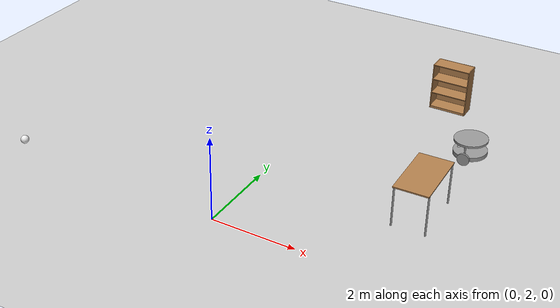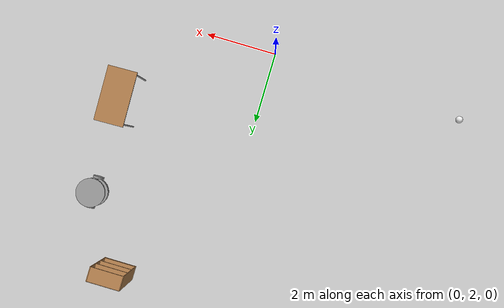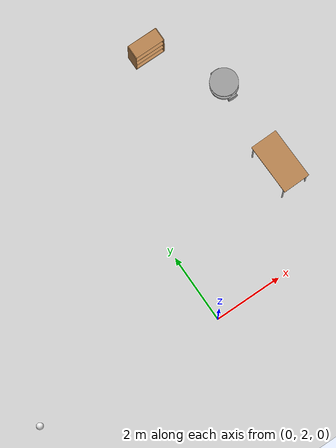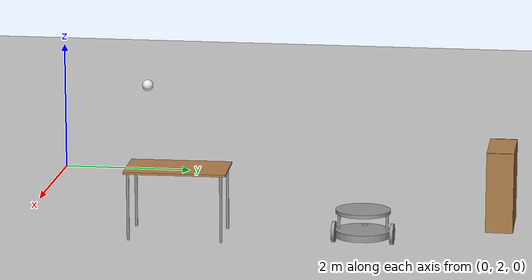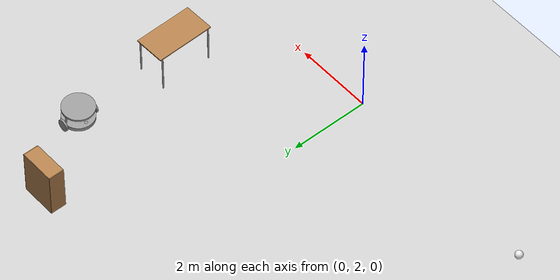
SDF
<sdf version="1.6">
 <world name="default">
  <model name="ground_plane">
   <static>1</static>
   <link name="link">
    <collision name="collision">
     <geometry><plane><normal>0 0 1</normal><size>100 100</size></plane></geometry>
     <surface>
      <contact><collide_bitmask>65535</collide_bitmask></contact>
      <friction><ode><mu>100</mu><mu2>50</mu2></ode></friction>
     </surface>
    </collision>
    <visual name="visual">
     <cast_shadows>0</cast_shadows>
     <geometry><plane><normal>0 0 1</normal><size>100 100</size></plane></geometry>
     <material>
      <script><uri>file://media/materials/scripts/gazebo.material</uri><name>Gazebo/Grey</name></script>
     </material>
    </visual>
   </link>
  </model>
  <model name="robot">
   <link name="link_0">
    <inertial>
     <mass>1</mass>
     <inertia><ixx>0.145833</ixx><ixy>0</ixy><ixz>0</ixz><iyy>0.145833</iyy><iyz>0</iyz><izz>0.125</izz></inertia>
    </inertial>
    <pose>0.367061 -0.311434 -0.068144 0 -0 0</pose>
    <visual name="visual">
     <geometry><cylinder><radius>0.4</radius><length>0.1</length></cylinder></geometry>
     <material>
      <lighting>1</lighting>
      <script><uri>file://media/materials/scripts/gazebo.material</uri><name>Gazebo/Grey</name></script>
      <shader type="vertex"><normal_map>__default__</normal_map></shader>
      <ambient>0.3 0.3 0.3 1</ambient>
      <diffuse>0.7 0.7 0.7 1</diffuse>
      <specular>0.01 0.01 0.01 1</specular>
      <emissive>0 0 0 1</emissive>
     </material>
    </visual>
    <collision name="collision">
     <geometry><cylinder><radius>0.4</radius><length>0.1</length></cylinder></geometry>
     <surface>
      <friction>
       <ode><mu>1</mu><mu2>1</mu2><fdir1>0 0 0</fdir1><slip1>0</slip1><slip2>0</slip2></ode>
       <torsional>
        <coefficient>1</coefficient>
        <patch_radius>0</patch_radius>
        <surface_radius>0</surface_radius>
        <use_patch_radius>1</use_patch_radius>
        <ode><slip>0</slip></ode>
       </torsional>
      </friction>
      <bounce><restitution_coefficient>0</restitution_coefficient><threshold>1e+06</threshold></bounce>
      <contact>
       <collide_without_contact>0</collide_without_contact>
       <collide_without_contact_bitmask>1</collide_without_contact_bitmask>
       <collide_bitmask>1</collide_bitmask>
       <ode>
        <soft_cfm>0</soft_cfm>
        <soft_erp>0.2</soft_erp>
        <kp>1e+13</kp>
        <kd>1</kd>
        <max_vel>0.01</max_vel>
        <min_depth>0</min_depth>
       </ode>
       <bullet>
        <split_impulse>1</split_impulse>
        <split_impulse_penetration_threshold>-0.01</split_impulse_penetration_threshold>
        <soft_cfm>0</soft_cfm>
        <soft_erp>0.2</soft_erp>
        <kp>1e+13</kp>
        <kd>1</kd>
       </bullet>
      </contact>
     </surface>
    </collision>
   </link>
   <link name="link_0_clone">
    <inertial>
     <mass>1</mass>
     <inertia><ixx>0.145833</ixx><ixy>0</ixy><ixz>0</ixz><iyy>0.145833</iyy><iyz>0</iyz><izz>0.125</izz></inertia>
    </inertial>
    <pose>0.367061 -0.311434 0.256856 0 -0 0</pose>
    <visual name="visual">
     <geometry><cylinder><radius>0.4</radius><length>0.05</length></cylinder></geometry>
     <material>
      <lighting>1</lighting>
      <script><uri>file://media/materials/scripts/gazebo.material</uri><name>Gazebo/Grey</name></script>
      <shader type="vertex"><normal_map>__default__</normal_map></shader>
      <ambient>0.3 0.3 0.3 1</ambient>
      <diffuse>0.7 0.7 0.7 1</diffuse>
      <specular>0.01 0.01 0.01 1</specular>
      <emissive>0 0 0 1</emissive>
     </material>
    </visual>
    <collision name="collision">
     <geometry><cylinder><radius>0.4</radius><length>0.05</length></cylinder></geometry>
     <surface>
      <friction>
       <ode><mu>1</mu><mu2>1</mu2><fdir1>0 0 0</fdir1><slip1>0</slip1><slip2>0</slip2></ode>
       <torsional>
        <coefficient>1</coefficient>
        <patch_radius>0</patch_radius>
        <surface_radius>0</surface_radius>
        <use_patch_radius>1</use_patch_radius>
        <ode><slip>0</slip></ode>
       </torsional>
      </friction>
      <bounce><restitution_coefficient>0</restitution_coefficient><threshold>1e+06</threshold></bounce>
      <contact>
       <collide_without_contact>0</collide_without_contact>
       <collide_without_contact_bitmask>1</collide_without_contact_bitmask>
       <collide_bitmask>1</collide_bitmask>
       <ode>
        <soft_cfm>0</soft_cfm>
        <soft_erp>0.2</soft_erp>
        <kp>1e+13</kp>
        <kd>1</kd>
        <max_vel>0.01</max_vel>
        <min_depth>0</min_depth>
       </ode>
       <bullet>
        <split_impulse>1</split_impulse>
        <split_impulse_penetration_threshold>-0.01</split_impulse_penetration_threshold>
        <soft_cfm>0</soft_cfm>
        <soft_erp>0.2</soft_erp>
        <kp>1e+13</kp>
        <kd>1</kd>
       </bullet>
      </contact>
     </surface>
    </collision>
   </link>
   <link name="link_1">
    <inertial>
     <mass>1</mass>
     <inertia><ixx>0.145833</ixx><ixy>0</ixy><ixz>0</ixz><iyy>0.145833</iyy><iyz>0</iyz><izz>0.125</izz></inertia>
    </inertial>
    <pose>0.367061 -0.736453 -0.068144 1.5707 -0 0</pose>
    <visual name="visual">
     <geometry><cylinder><radius>0.15</radius><length>0.05</length></cylinder></geometry>
     <material>
      <lighting>1</lighting>
      <script><uri>file://media/materials/scripts/gazebo.material</uri><name>Gazebo/Grey</name></script>
      <shader type="vertex"><normal_map>__default__</normal_map></shader>
      <ambient>0.3 0.3 0.3 1</ambient>
      <diffuse>0.7 0.7 0.7 1</diffuse>
      <specular>0.01 0.01 0.01 1</specular>
      <emissive>0 0 0 1</emissive>
     </material>
    </visual>
    <collision name="collision">
     <geometry><cylinder><radius>0.15</radius><length>0.05</length></cylinder></geometry>
     <surface>
      <friction>
       <ode><mu>1</mu><mu2>1</mu2><fdir1>0 0 0</fdir1><slip1>0</slip1><slip2>0</slip2></ode>
       <torsional>
        <coefficient>1</coefficient>
        <patch_radius>0</patch_radius>
        <surface_radius>0</surface_radius>
        <use_patch_radius>1</use_patch_radius>
        <ode><slip>0</slip></ode>
       </torsional>
      </friction>
      <bounce><restitution_coefficient>0</restitution_coefficient><threshold>1e+06</threshold></bounce>
      <contact>
       <collide_without_contact>0</collide_without_contact>
       <collide_without_contact_bitmask>1</collide_without_contact_bitmask>
       <collide_bitmask>1</collide_bitmask>
       <ode>
        <soft_cfm>0</soft_cfm>
        <soft_erp>0.2</soft_erp>
        <kp>1e+13</kp>
        <kd>1</kd>
        <max_vel>0.01</max_vel>
        <min_depth>0</min_depth>
       </ode>
       <bullet>
        <split_impulse>1</split_impulse>
        <split_impulse_penetration_threshold>-0.01</split_impulse_penetration_threshold>
        <soft_cfm>0</soft_cfm>
        <soft_erp>0.2</soft_erp>
        <kp>1e+13</kp>
        <kd>1</kd>
       </bullet>
      </contact>
     </surface>
    </collision>
   </link>
   <link name="link_1_clone">
    <inertial>
     <mass>1</mass>
     <inertia><ixx>0.145833</ixx><ixy>0</ixy><ixz>0</ixz><iyy>0.145833</iyy><iyz>0</iyz><izz>0.125</izz></inertia>
    </inertial>
    <pose>0.367061 0.113585 -0.068144 1.5707 -0 0</pose>
    <visual name="visual">
     <geometry><cylinder><radius>0.15</radius><length>0.05</length></cylinder></geometry>
     <material>
      <lighting>1</lighting>
      <script><uri>file://media/materials/scripts/gazebo.material</uri><name>Gazebo/Grey</name></script>
      <shader type="vertex"><normal_map>__default__</normal_map></shader>
      <ambient>0.3 0.3 0.3 1</ambient>
      <diffuse>0.7 0.7 0.7 1</diffuse>
      <specular>0.01 0.01 0.01 1</specular>
      <emissive>0 0 0 1</emissive>
     </material>
    </visual>
    <collision name="collision">
     <geometry><cylinder><radius>0.15</radius><length>0.05</length></cylinder></geometry>
     <surface>
      <friction>
       <ode><mu>1</mu><mu2>1</mu2><fdir1>0 0 0</fdir1><slip1>0</slip1><slip2>0</slip2></ode>
       <torsional>
        <coefficient>1</coefficient>
        <patch_radius>0</patch_radius>
        <surface_radius>0</surface_radius>
        <use_patch_radius>1</use_patch_radius>
        <ode><slip>0</slip></ode>
       </torsional>
      </friction>
      <bounce><restitution_coefficient>0</restitution_coefficient><threshold>1e+06</threshold></bounce>
      <contact>
       <collide_without_contact>0</collide_without_contact>
       <collide_without_contact_bitmask>1</collide_without_contact_bitmask>
       <collide_bitmask>1</collide_bitmask>
       <ode>
        <soft_cfm>0</soft_cfm>
        <soft_erp>0.2</soft_erp>
        <kp>1e+13</kp>
        <kd>1</kd>
        <max_vel>0.01</max_vel>
        <min_depth>0</min_depth>
       </ode>
       <bullet>
        <split_impulse>1</split_impulse>
        <split_impulse_penetration_threshold>-0.01</split_impulse_penetration_threshold>
        <soft_cfm>0</soft_cfm>
        <soft_erp>0.2</soft_erp>
        <kp>1e+13</kp>
        <kd>1</kd>
       </bullet>
      </contact>
     </surface>
    </collision>
   </link>
   <link name="link_4_clone">
    <inertial>
     <mass>1</mass>
     <inertia><ixx>0.1</ixx><ixy>0</ixy><ixz>0</ixz><iyy>0.1</iyy><iyz>0</iyz><izz>0.1</izz></inertia>
    </inertial>
    <pose>0.087061 -0.311434 -0.108068 0 -0 0</pose>
    <visual name="visual">
     <geometry><sphere><radius>0.1</radius></sphere></geometry>
     <material>
      <lighting>1</lighting>
      <script><uri>file://media/materials/scripts/gazebo.material</uri><name>Gazebo/Grey</name></script>
      <shader type="vertex"><normal_map>__default__</normal_map></shader>
      <ambient>0.3 0.3 0.3 1</ambient>
      <diffuse>0.7 0.7 0.7 1</diffuse>
      <specular>0.01 0.01 0.01 1</specular>
      <emissive>0 0 0 1</emissive>
     </material>
    </visual>
    <collision name="collision">
     <geometry><sphere><radius>0.1</radius></sphere></geometry>
     <surface>
      <friction>
       <ode><mu>1</mu><mu2>1</mu2><fdir1>0 0 0</fdir1><slip1>0</slip1><slip2>0</slip2></ode>
       <torsional>
        <coefficient>1</coefficient>
        <patch_radius>0</patch_radius>
        <surface_radius>0</surface_radius>
        <use_patch_radius>1</use_patch_radius>
        <ode><slip>0</slip></ode>
       </torsional>
      </friction>
      <bounce><restitution_coefficient>0</restitution_coefficient><threshold>1e+06</threshold></bounce>
      <contact>
       <collide_without_contact>0</collide_without_contact>
       <collide_without_contact_bitmask>1</collide_without_contact_bitmask>
       <collide_bitmask>1</collide_bitmask>
       <ode>
        <soft_cfm>0</soft_cfm>
        <soft_erp>0.2</soft_erp>
        <kp>1e+13</kp>
        <kd>1</kd>
        <max_vel>0.01</max_vel>
        <min_depth>0</min_depth>
       </ode>
       <bullet>
        <split_impulse>1</split_impulse>
        <split_impulse_penetration_threshold>-0.01</split_impulse_penetration_threshold>
        <soft_cfm>0</soft_cfm>
        <soft_erp>0.2</soft_erp>
        <kp>1e+13</kp>
        <kd>1</kd>
       </bullet>
      </contact>
     </surface>
    </collision>
   </link>
   <link name="link_5_clone">
    <inertial>
     <mass>1</mass>
     <inertia><ixx>0.145833</ixx><ixy>0</ixy><ixz>0</ixz><iyy>0.145833</iyy><iyz>0</iyz><izz>0.125</izz></inertia>
    </inertial>
    <pose>0.367061 -0.661434 0.081856 0 -0 0</pose>
    <visual name="visual">
     <geometry><cylinder><radius>0.02</radius><length>0.3</length></cylinder></geometry>
     <material>
      <lighting>1</lighting>
      <script><uri>file://media/materials/scripts/gazebo.material</uri><name>Gazebo/Grey</name></script>
      <shader type="vertex"><normal_map>__default__</normal_map></shader>
      <ambient>0.3 0.3 0.3 1</ambient>
      <diffuse>0.7 0.7 0.7 1</diffuse>
      <specular>0.01 0.01 0.01 1</specular>
      <emissive>0 0 0 1</emissive>
     </material>
    </visual>
    <collision name="collision">
     <geometry><cylinder><radius>0.02</radius><length>0.3</length></cylinder></geometry>
     <surface>
      <friction>
       <ode><mu>1</mu><mu2>1</mu2><fdir1>0 0 0</fdir1><slip1>0</slip1><slip2>0</slip2></ode>
       <torsional>
        <coefficient>1</coefficient>
        <patch_radius>0</patch_radius>
        <surface_radius>0</surface_radius>
        <use_patch_radius>1</use_patch_radius>
        <ode><slip>0</slip></ode>
       </torsional>
      </friction>
      <bounce><restitution_coefficient>0</restitution_coefficient><threshold>1e+06</threshold></bounce>
      <contact>
       <collide_without_contact>0</collide_without_contact>
       <collide_without_contact_bitmask>1</collide_without_contact_bitmask>
       <collide_bitmask>1</collide_bitmask>
       <ode>
        <soft_cfm>0</soft_cfm>
        <soft_erp>0.2</soft_erp>
        <kp>1e+13</kp>
        <kd>1</kd>
        <max_vel>0.01</max_vel>
        <min_depth>0</min_depth>
       </ode>
       <bullet>
        <split_impulse>1</split_impulse>
        <split_impulse_penetration_threshold>-0.01</split_impulse_penetration_threshold>
        <soft_cfm>0</soft_cfm>
        <soft_erp>0.2</soft_erp>
        <kp>1e+13</kp>
        <kd>1</kd>
       </bullet>
      </contact>
     </surface>
    </collision>
   </link>
   <link name="link_5_clone_clone">
    <inertial>
     <mass>1</mass>
     <inertia><ixx>0.145833</ixx><ixy>0</ixy><ixz>0</ixz><iyy>0.145833</iyy><iyz>0</iyz><izz>0.125</izz></inertia>
    </inertial>
    <pose>0.367061 0.038566 0.081856 0 -0 0</pose>
    <visual name="visual">
     <geometry><cylinder><radius>0.02</radius><length>0.3</length></cylinder></geometry>
     <material>
      <lighting>1</lighting>
      <script><uri>file://media/materials/scripts/gazebo.material</uri><name>Gazebo/Grey</name></script>
      <shader type="vertex"><normal_map>__default__</normal_map></shader>
      <ambient>0.3 0.3 0.3 1</ambient>
      <diffuse>0.7 0.7 0.7 1</diffuse>
      <specular>0.01 0.01 0.01 1</specular>
      <emissive>0 0 0 1</emissive>
     </material>
    </visual>
    <collision name="collision">
     <geometry><cylinder><radius>0.02</radius><length>0.3</length></cylinder></geometry>
     <surface>
      <friction>
       <ode><mu>1</mu><mu2>1</mu2><fdir1>0 0 0</fdir1><slip1>0</slip1><slip2>0</slip2></ode>
       <torsional>
        <coefficient>1</coefficient>
        <patch_radius>0</patch_radius>
        <surface_radius>0</surface_radius>
        <use_patch_radius>1</use_patch_radius>
        <ode><slip>0</slip></ode>
       </torsional>
      </friction>
      <bounce><restitution_coefficient>0</restitution_coefficient><threshold>1e+06</threshold></bounce>
      <contact>
       <collide_without_contact>0</collide_without_contact>
       <collide_without_contact_bitmask>1</collide_without_contact_bitmask>
       <collide_bitmask>1</collide_bitmask>
       <ode>
        <soft_cfm>0</soft_cfm>
        <soft_erp>0.2</soft_erp>
        <kp>1e+13</kp>
        <kd>1</kd>
        <max_vel>0.01</max_vel>
        <min_depth>0</min_depth>
       </ode>
       <bullet>
        <split_impulse>1</split_impulse>
        <split_impulse_penetration_threshold>-0.01</split_impulse_penetration_threshold>
        <soft_cfm>0</soft_cfm>
        <soft_erp>0.2</soft_erp>
        <kp>1e+13</kp>
        <kd>1</kd>
       </bullet>
      </contact>
     </surface>
    </collision>
   </link>
   <joint name="link_0_JOINT_0" type="revolute">
    <parent>link_0</parent>
    <child>link_1</child>
    <axis>
     <xyz>0 0 1</xyz>
     <use_parent_model_frame>0</use_parent_model_frame>
     <limit>
      <lower>-1.79769e+308</lower>
      <upper>1.79769e+308</upper>
      <effort>-1</effort>
      <velocity>-1</velocity>
     </limit>
     <dynamics>
      <spring_reference>0</spring_reference>
      <spring_stiffness>0</spring_stiffness>
      <damping>0</damping>
      <friction>0</friction>
     </dynamics>
    </axis>
    <physics>
     <ode><limit><cfm>0</cfm><erp>0.2</erp></limit><suspension><cfm>0</cfm><erp>0.2</erp></suspension></ode>
    </physics>
   </joint>
   <joint name="link_0_JOINT_10" type="fixed">
    <parent>link_0</parent>
    <child>link_5_clone_clone</child>
    <physics>
     <ode><limit><cfm>0</cfm><erp>0.2</erp></limit><suspension><cfm>0</cfm><erp>0.2</erp></suspension></ode>
    </physics>
   </joint>
   <joint name="link_0_JOINT_1" type="revolute">
    <parent>link_0</parent>
    <child>link_1_clone</child>
    <axis>
     <xyz>0 0 1</xyz>
     <use_parent_model_frame>0</use_parent_model_frame>
     <limit>
      <lower>-1.79769e+308</lower>
      <upper>1.79769e+308</upper>
      <effort>-1</effort>
      <velocity>-1</velocity>
     </limit>
     <dynamics>
      <spring_reference>0</spring_reference>
      <spring_stiffness>0</spring_stiffness>
      <damping>0</damping>
      <friction>0</friction>
     </dynamics>
    </axis>
    <physics>
     <ode><limit><cfm>0</cfm><erp>0.2</erp></limit><suspension><cfm>0</cfm><erp>0.2</erp></suspension></ode>
    </physics>
   </joint>
   <joint name="link_0_JOINT_8" type="ball">
    <parent>link_0</parent>
    <child>link_4_clone</child>
    <pose>0 0 -0.1 0 -0 0</pose>
    <physics>
     <ode><limit><cfm>0</cfm><erp>0.2</erp></limit><suspension><cfm>0</cfm><erp>0.2</erp></suspension></ode>
    </physics>
   </joint>
   <joint name="link_0_JOINT_9" type="fixed">
    <parent>link_0</parent>
    <child>link_5_clone</child>
    <physics>
     <ode><limit><cfm>0</cfm><erp>0.2</erp></limit><suspension><cfm>0</cfm><erp>0.2</erp></suspension></ode>
    </physics>
   </joint>
   <joint name="link_5_clone_clone_JOINT_12" type="fixed">
    <parent>link_5_clone_clone</parent>
    <child>link_0_clone</child>
    <physics>
     <ode><limit><cfm>0</cfm><erp>0.2</erp></limit><suspension><cfm>0</cfm><erp>0.2</erp></suspension></ode>
    </physics>
   </joint>
   <static>0</static>
   <pose>3.41612 7.49908 0.204772 -3e-06 -0.036316 -0.020552</pose>
  </model>
  <model name="table">
   <static>1</static>
   <link name="link">
    <collision name="surface">
     <pose>0 0 1 0 -0 0</pose>
     <geometry><box><size>1.5 0.8 0.03</size></box></geometry>
     <surface><friction><ode><mu>0.6</mu><mu2>0.6</mu2></ode></friction></surface>
    </collision>
    <visual name="visual1">
     <pose>0 0 1 0 -0 0</pose>
     <geometry><box><size>1.5 0.8 0.03</size></box></geometry>
     <material>
      <script><uri>file://media/materials/scripts/gazebo.material</uri><name>Gazebo/Wood</name></script>
     </material>
    </visual>
    <collision name="front_left_leg">
     <pose>0.68 0.38 0.5 0 -0 0</pose>
     <geometry><cylinder><radius>0.02</radius><length>1</length></cylinder></geometry>
    </collision>
    <visual name="front_left_leg">
     <pose>0.68 0.38 0.5 0 -0 0</pose>
     <geometry><cylinder><radius>0.02</radius><length>1</length></cylinder></geometry>
     <material>
      <script><uri>file://media/materials/scripts/gazebo.material</uri><name>Gazebo/Grey</name></script>
     </material>
    </visual>
    <collision name="front_right_leg">
     <pose>0.68 -0.38 0.5 0 -0 0</pose>
     <geometry><cylinder><radius>0.02</radius><length>1</length></cylinder></geometry>
    </collision>
    <visual name="front_right_leg">
     <pose>0.68 -0.38 0.5 0 -0 0</pose>
     <geometry><cylinder><radius>0.02</radius><length>1</length></cylinder></geometry>
     <material>
      <script><uri>file://media/materials/scripts/gazebo.material</uri><name>Gazebo/Grey</name></script>
     </material>
    </visual>
    <collision name="back_right_leg">
     <pose>-0.68 -0.38 0.5 0 -0 0</pose>
     <geometry><cylinder><radius>0.02</radius><length>1</length></cylinder></geometry>
    </collision>
    <visual name="back_right_leg">
     <pose>-0.68 -0.38 0.5 0 -0 0</pose>
     <geometry><cylinder><radius>0.02</radius><length>1</length></cylinder></geometry>
     <material>
      <script><uri>file://media/materials/scripts/gazebo.material</uri><name>Gazebo/Grey</name></script>
     </material>
    </visual>
    <collision name="back_left_leg">
     <pose>-0.68 0.38 0.5 0 -0 0</pose>
     <geometry><cylinder><radius>0.02</radius><length>1</length></cylinder></geometry>
    </collision>
    <visual name="back_left_leg">
     <pose>-0.68 0.38 0.5 0 -0 0</pose>
     <geometry><cylinder><radius>0.02</radius><length>1</length></cylinder></geometry>
     <material>
      <script><uri>file://media/materials/scripts/gazebo.material</uri><name>Gazebo/Grey</name></script>
     </material>
    </visual>
   </link>
   <pose>3.68533 4.45291 0 0 0 -1.54442</pose>
  </model>
  <model name="bookshelf">
   <static>1</static>
   <link name="link">
    <inertial><mass>1</mass></inertial>
    <collision name="back">
     <pose>0 0.005 0.6 0 -0 0</pose>
     <geometry><box><size>0.9 0.01 1.2</size></box></geometry>
    </collision>
    <visual name="visual1">
     <pose>0 0.005 0.6 0 -0 0</pose>
     <geometry><box><size>0.9 0.01 1.2</size></box></geometry>
     <material>
      <script><uri>file://media/materials/scripts/gazebo.material</uri><name>Gazebo/Wood</name></script>
     </material>
    </visual>
    <collision name="left_side">
     <pose>0.45 -0.195 0.6 0 -0 0</pose>
     <geometry><box><size>0.02 0.4 1.2</size></box></geometry>
    </collision>
    <visual name="visual2">
     <pose>0.45 -0.195 0.6 0 -0 0</pose>
     <geometry><box><size>0.02 0.4 1.2</size></box></geometry>
     <material>
      <script><uri>file://media/materials/scripts/gazebo.material</uri><name>Gazebo/Wood</name></script>
     </material>
    </visual>
    <collision name="right_side">
     <pose>-0.45 -0.195 0.6 0 -0 0</pose>
     <geometry><box><size>0.02 0.4 1.2</size></box></geometry>
    </collision>
    <visual name="visual3">
     <pose>-0.45 -0.195 0.6 0 -0 0</pose>
     <geometry><box><size>0.02 0.4 1.2</size></box></geometry>
     <material>
      <script><uri>file://media/materials/scripts/gazebo.material</uri><name>Gazebo/Wood</name></script>
     </material>
    </visual>
    <collision name="bottom">
     <pose>0 -0.195 0.03 0 -0 0</pose>
     <geometry><box><size>0.88 0.4 0.06</size></box></geometry>
    </collision>
    <visual name="visual4">
     <pose>0 -0.195 0.03 0 -0 0</pose>
     <geometry><box><size>0.88 0.4 0.06</size></box></geometry>
     <material>
      <script><uri>file://media/materials/scripts/gazebo.material</uri><name>Gazebo/Wood</name></script>
     </material>
    </visual>
    <collision name="top">
     <pose>0 -0.195 1.19 0 -0 0</pose>
     <geometry><box><size>0.88 0.4 0.02</size></box></geometry>
    </collision>
    <visual name="visual5">
     <pose>0 -0.195 1.19 0 -0 0</pose>
     <geometry><box><size>0.88 0.4 0.02</size></box></geometry>
     <material>
      <script><uri>file://media/materials/scripts/gazebo.material</uri><name>Gazebo/Wood</name></script>
     </material>
    </visual>
    <collision name="low_shelf">
     <pose>0 -0.195 0.43 0 -0 0</pose>
     <geometry><box><size>0.88 0.4 0.02</size></box></geometry>
    </collision>
    <visual name="visual6">
     <pose>0 -0.195 0.43 0 -0 0</pose>
     <geometry><box><size>0.88 0.4 0.02</size></box></geometry>
     <material>
      <script><uri>file://media/materials/scripts/gazebo.material</uri><name>Gazebo/Wood</name></script>
     </material>
    </visual>
    <collision name="high_shelf">
     <pose>0 -0.195 0.8 0 -0 0</pose>
     <geometry><box><size>0.88 0.4 0.02</size></box></geometry>
    </collision>
    <visual name="visual7">
     <pose>0 -0.195 0.8 0 -0 0</pose>
     <geometry><box><size>0.88 0.4 0.02</size></box></geometry>
     <material>
      <script><uri>file://media/materials/scripts/gazebo.material</uri><name>Gazebo/Wood</name></script>
     </material>
    </visual>
   </link>
   <pose>2.53527 9.29769 0 0 -0 0</pose>
  </model>
  <model name="my_ball">
   <link name="link_0">
    <inertial>
     <mass>1</mass>
     <inertia><ixx>0.1</ixx><ixy>0</ixy><ixz>0</ixz><iyy>0.1</iyy><iyz>0</iyz><izz>0.1</izz></inertia>
    </inertial>
    <visual name="visual">
     <geometry><sphere><radius>0.1</radius></sphere></geometry>
     <material>
      <lighting>1</lighting>
      <script><uri>file://media/materials/scripts/gazebo.material</uri><name>Gazebo/White</name></script>
      <shader type="vertex"><normal_map>__default__</normal_map></shader>
      <ambient>1 1 1 1</ambient>
      <diffuse>1 1 1 1</diffuse>
      <specular>1 1 1 1</specular>
      <emissive>1 1 1 1</emissive>
     </material>
    </visual>
    <collision name="collision">
     <geometry><sphere><radius>0.1</radius></sphere></geometry>
     <surface>
      <friction>
       <ode><mu>1</mu><mu2>1</mu2><fdir1>0 0 0</fdir1><slip1>0</slip1><slip2>0</slip2></ode>
       <torsional>
        <coefficient>1</coefficient>
        <patch_radius>0</patch_radius>
        <surface_radius>0</surface_radius>
        <use_patch_radius>1</use_patch_radius>
        <ode><slip>0</slip></ode>
       </torsional>
      </friction>
      <bounce><restitution_coefficient>0</restitution_coefficient><threshold>1e+06</threshold></bounce>
      <contact>
       <collide_without_contact>0</collide_without_contact>
       <collide_without_contact_bitmask>1</collide_without_contact_bitmask>
       <collide_bitmask>1</collide_bitmask>
       <ode>
        <soft_cfm>0</soft_cfm>
        <soft_erp>0.2</soft_erp>
        <kp>1e+13</kp>
        <kd>1</kd>
        <max_vel>0.01</max_vel>
        <min_depth>0</min_depth>
       </ode>
       <bullet>
        <split_impulse>1</split_impulse>
        <split_impulse_penetration_threshold>-0.01</split_impulse_penetration_threshold>
        <soft_cfm>0</soft_cfm>
        <soft_erp>0.2</soft_erp>
        <kp>1e+13</kp>
        <kd>1</kd>
       </bullet>
      </contact>
     </surface>
    </collision>
   </link>
   <static>0</static>
   <pose>-5.50594 2.30464 0.1 0 -0 0</pose>
  </model>
 </world>
</sdf>
